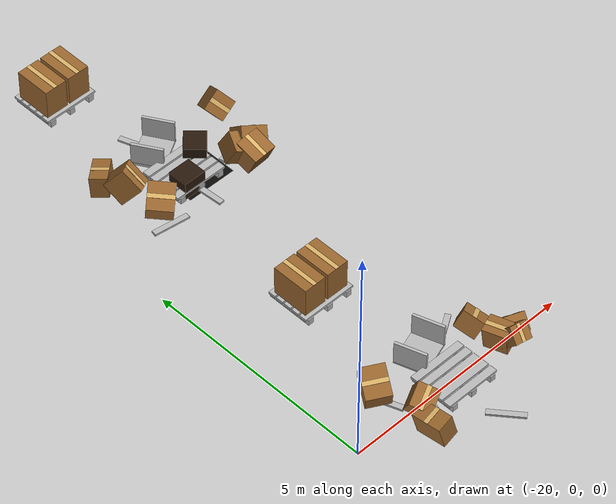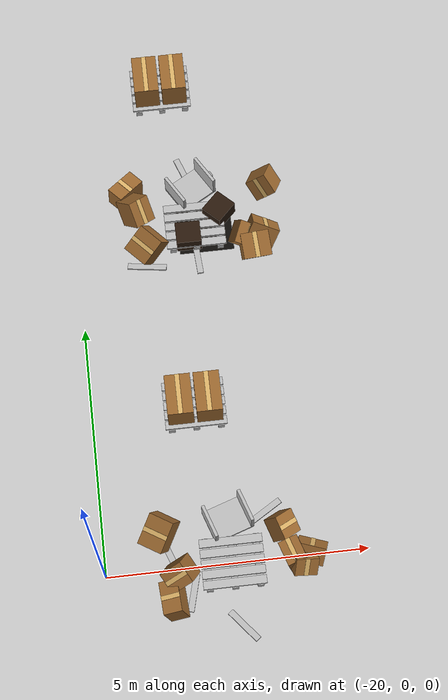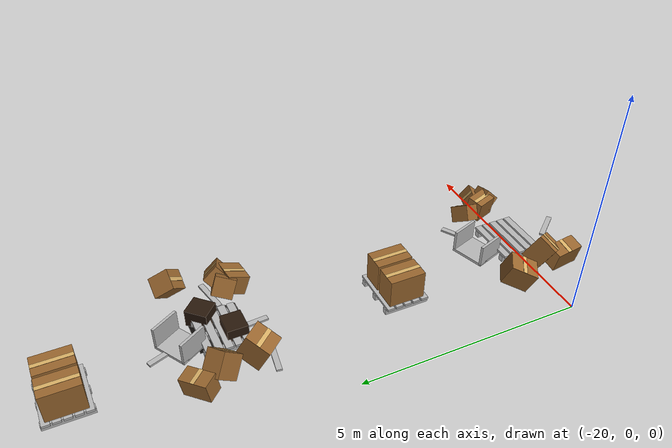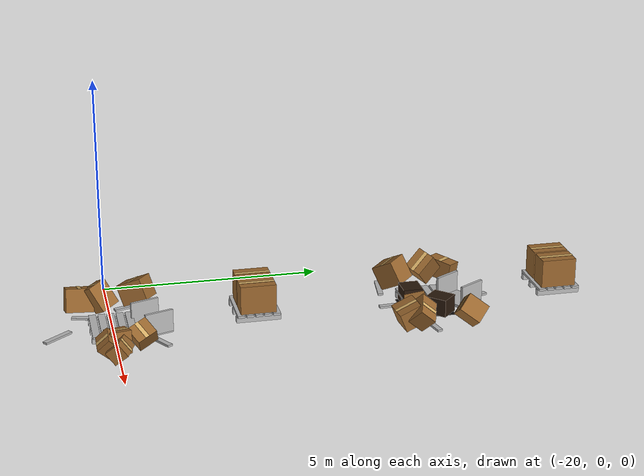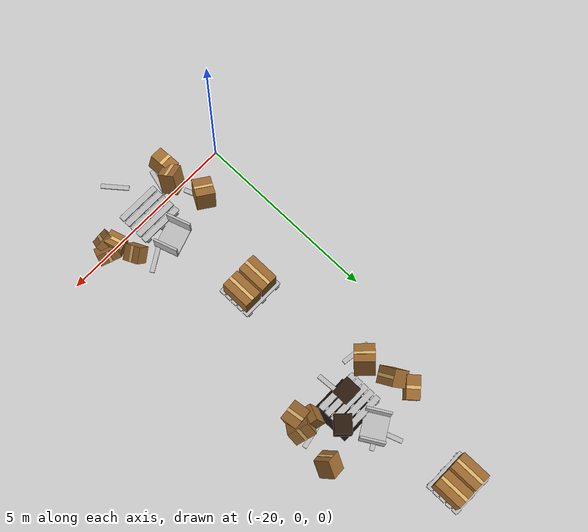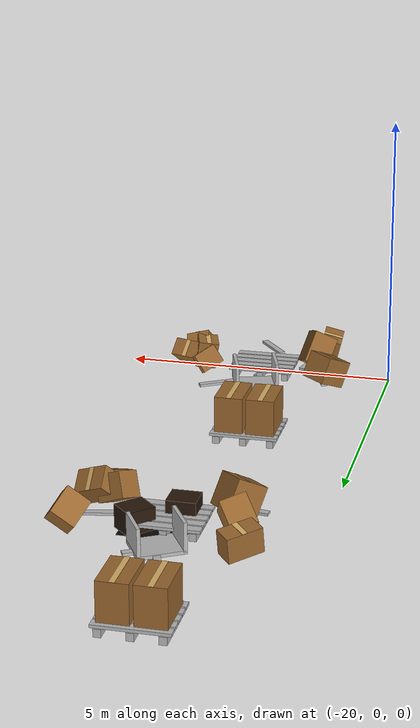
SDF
<sdf version="1.9">
 <world name="factory">
  <model name="organized_pallet_-1_2">
   <static>true</static>
   <pose>-18 3.2 0 0 0 0</pose>
   <link name="body">
    <visual name="runner0_visual">
     <pose>-0.48 0 0.065 0 0 0</pose>
     <geometry><mesh><uri>model://factory_scene_assets/meshes/wood_011.dae</uri></mesh></geometry>
    </visual>
    <collision name="runner0_collision">
     <pose>-0.48 0 0.065 0 0 0</pose>
     <geometry><box><size>0.12 1 0.13</size></box></geometry>
    </collision>
    <visual name="runner1_visual">
     <pose>0 0 0.065 0 0 0</pose>
     <geometry><mesh><uri>model://factory_scene_assets/meshes/wood_011.dae</uri></mesh></geometry>
    </visual>
    <collision name="runner1_collision">
     <pose>0 0 0.065 0 0 0</pose>
     <geometry><box><size>0.12 1 0.13</size></box></geometry>
    </collision>
    <visual name="runner2_visual">
     <pose>0.48 0 0.065 0 0 0</pose>
     <geometry><mesh><uri>model://factory_scene_assets/meshes/wood_011.dae</uri></mesh></geometry>
    </visual>
    <collision name="runner2_collision">
     <pose>0.48 0 0.065 0 0 0</pose>
     <geometry><box><size>0.12 1 0.13</size></box></geometry>
    </collision>
    <visual name="plank0_visual">
     <pose>0 -0.4 0.155 0 0 0</pose>
     <geometry><mesh><uri>model://factory_scene_assets/meshes/wood_012.dae</uri></mesh></geometry>
    </visual>
    <collision name="plank0_collision">
     <pose>0 -0.4 0.155 0 0 0</pose>
     <geometry><box><size>1.2 0.16 0.05</size></box></geometry>
    </collision>
    <visual name="plank1_visual">
     <pose>0 -0.2 0.155 0 0 0</pose>
     <geometry><mesh><uri>model://factory_scene_assets/meshes/wood_012.dae</uri></mesh></geometry>
    </visual>
    <collision name="plank1_collision">
     <pose>0 -0.2 0.155 0 0 0</pose>
     <geometry><box><size>1.2 0.16 0.05</size></box></geometry>
    </collision>
    <visual name="plank2_visual">
     <pose>0 0 0.155 0 0 0</pose>
     <geometry><mesh><uri>model://factory_scene_assets/meshes/wood_012.dae</uri></mesh></geometry>
    </visual>
    <collision name="plank2_collision">
     <pose>0 0 0.155 0 0 0</pose>
     <geometry><box><size>1.2 0.16 0.05</size></box></geometry>
    </collision>
    <visual name="plank3_visual">
     <pose>0 0.2 0.155 0 0 0</pose>
     <geometry><mesh><uri>model://factory_scene_assets/meshes/wood_012.dae</uri></mesh></geometry>
    </visual>
    <collision name="plank3_collision">
     <pose>0 0.2 0.155 0 0 0</pose>
     <geometry><box><size>1.2 0.16 0.05</size></box></geometry>
    </collision>
    <visual name="plank4_visual">
     <pose>0 0.4 0.155 0 0 0</pose>
     <geometry><mesh><uri>model://factory_scene_assets/meshes/wood_012.dae</uri></mesh></geometry>
    </visual>
    <collision name="plank4_collision">
     <pose>0 0.4 0.155 0 0 0</pose>
     <geometry><box><size>1.2 0.16 0.05</size></box></geometry>
    </collision>
    <visual name="load0_visual">
     <pose>-0.28 0 0.505 0 0 0</pose>
     <geometry><box><size>0.5 0.8 0.65</size></box></geometry>
     <material><ambient>.60 .40 .18 1</ambient><diffuse>.60 .40 .18 1</diffuse></material>
    </visual>
    <collision name="load0_collision">
     <pose>-0.28 0 0.505 0 0 0</pose>
     <geometry><box><size>0.5 0.8 0.65</size></box></geometry>
    </collision>
    <visual name="load0_tape_visual">
     <pose>-0.28 0 0.833 0 0 0</pose>
     <geometry><box><size>0.09 0.8 0.006</size></box></geometry>
     <material><ambient>.85 .69 .4 1</ambient><diffuse>.85 .69 .4 1</diffuse></material>
    </visual>
    <visual name="load1_visual">
     <pose>0.28 0 0.505 0 0 0</pose>
     <geometry><box><size>0.5 0.8 0.65</size></box></geometry>
     <material><ambient>.60 .40 .18 1</ambient><diffuse>.60 .40 .18 1</diffuse></material>
    </visual>
    <collision name="load1_collision">
     <pose>0.28 0 0.505 0 0 0</pose>
     <geometry><box><size>0.5 0.8 0.65</size></box></geometry>
    </collision>
    <visual name="load1_tape_visual">
     <pose>0.28 0 0.833 0 0 0</pose>
     <geometry><box><size>0.09 0.8 0.006</size></box></geometry>
     <material><ambient>.85 .69 .4 1</ambient><diffuse>.85 .69 .4 1</diffuse></material>
    </visual>
   </link>
  </model>
  <model name="organized_pallet_-1_3">
   <static>true</static>
   <pose>-18 10.2 0 0 0 0</pose>
   <link name="body">
    <visual name="runner0_visual">
     <pose>-0.48 0 0.065 0 0 0</pose>
     <geometry><mesh><uri>model://factory_scene_assets/meshes/wood_011.dae</uri></mesh></geometry>
    </visual>
    <collision name="runner0_collision">
     <pose>-0.48 0 0.065 0 0 0</pose>
     <geometry><box><size>0.12 1 0.13</size></box></geometry>
    </collision>
    <visual name="runner1_visual">
     <pose>0 0 0.065 0 0 0</pose>
     <geometry><mesh><uri>model://factory_scene_assets/meshes/wood_011.dae</uri></mesh></geometry>
    </visual>
    <collision name="runner1_collision">
     <pose>0 0 0.065 0 0 0</pose>
     <geometry><box><size>0.12 1 0.13</size></box></geometry>
    </collision>
    <visual name="runner2_visual">
     <pose>0.48 0 0.065 0 0 0</pose>
     <geometry><mesh><uri>model://factory_scene_assets/meshes/wood_011.dae</uri></mesh></geometry>
    </visual>
    <collision name="runner2_collision">
     <pose>0.48 0 0.065 0 0 0</pose>
     <geometry><box><size>0.12 1 0.13</size></box></geometry>
    </collision>
    <visual name="plank0_visual">
     <pose>0 -0.4 0.155 0 0 0</pose>
     <geometry><mesh><uri>model://factory_scene_assets/meshes/wood_012.dae</uri></mesh></geometry>
    </visual>
    <collision name="plank0_collision">
     <pose>0 -0.4 0.155 0 0 0</pose>
     <geometry><box><size>1.2 0.16 0.05</size></box></geometry>
    </collision>
    <visual name="plank1_visual">
     <pose>0 -0.2 0.155 0 0 0</pose>
     <geometry><mesh><uri>model://factory_scene_assets/meshes/wood_012.dae</uri></mesh></geometry>
    </visual>
    <collision name="plank1_collision">
     <pose>0 -0.2 0.155 0 0 0</pose>
     <geometry><box><size>1.2 0.16 0.05</size></box></geometry>
    </collision>
    <visual name="plank2_visual">
     <pose>0 0 0.155 0 0 0</pose>
     <geometry><mesh><uri>model://factory_scene_assets/meshes/wood_012.dae</uri></mesh></geometry>
    </visual>
    <collision name="plank2_collision">
     <pose>0 0 0.155 0 0 0</pose>
     <geometry><box><size>1.2 0.16 0.05</size></box></geometry>
    </collision>
    <visual name="plank3_visual">
     <pose>0 0.2 0.155 0 0 0</pose>
     <geometry><mesh><uri>model://factory_scene_assets/meshes/wood_012.dae</uri></mesh></geometry>
    </visual>
    <collision name="plank3_collision">
     <pose>0 0.2 0.155 0 0 0</pose>
     <geometry><box><size>1.2 0.16 0.05</size></box></geometry>
    </collision>
    <visual name="plank4_visual">
     <pose>0 0.4 0.155 0 0 0</pose>
     <geometry><mesh><uri>model://factory_scene_assets/meshes/wood_012.dae</uri></mesh></geometry>
    </visual>
    <collision name="plank4_collision">
     <pose>0 0.4 0.155 0 0 0</pose>
     <geometry><box><size>1.2 0.16 0.05</size></box></geometry>
    </collision>
    <visual name="load0_visual">
     <pose>-0.28 0 0.505 0 0 0</pose>
     <geometry><box><size>0.5 0.8 0.65</size></box></geometry>
     <material><ambient>.60 .40 .18 1</ambient><diffuse>.60 .40 .18 1</diffuse></material>
    </visual>
    <collision name="load0_collision">
     <pose>-0.28 0 0.505 0 0 0</pose>
     <geometry><box><size>0.5 0.8 0.65</size></box></geometry>
    </collision>
    <visual name="load0_tape_visual">
     <pose>-0.28 0 0.833 0 0 0</pose>
     <geometry><box><size>0.09 0.8 0.006</size></box></geometry>
     <material><ambient>.85 .69 .4 1</ambient><diffuse>.85 .69 .4 1</diffuse></material>
    </visual>
    <visual name="load1_visual">
     <pose>0.28 0 0.505 0 0 0</pose>
     <geometry><box><size>0.5 0.8 0.65</size></box></geometry>
     <material><ambient>.60 .40 .18 1</ambient><diffuse>.60 .40 .18 1</diffuse></material>
    </visual>
    <collision name="load1_collision">
     <pose>0.28 0 0.505 0 0 0</pose>
     <geometry><box><size>0.5 0.8 0.65</size></box></geometry>
    </collision>
    <visual name="load1_tape_visual">
     <pose>0.28 0 0.833 0 0 0</pose>
     <geometry><box><size>0.09 0.8 0.006</size></box></geometry>
     <material><ambient>.85 .69 .4 1</ambient><diffuse>.85 .69 .4 1</diffuse></material>
    </visual>
   </link>
  </model>
  <model name="fallen_pallet_1">
   <static>true</static>
   <pose>-17.6 0 0 0 0 0</pose>
   <link name="body">
    <visual name="runner0_visual">
     <pose>-0.48 0 0.065 0 0 0</pose>
     <geometry><mesh><uri>model://factory_scene_assets/meshes/wood_011.dae</uri></mesh></geometry>
    </visual>
    <collision name="runner0_collision">
     <pose>-0.48 0 0.065 0 0 0</pose>
     <geometry><box><size>0.12 1 0.13</size></box></geometry>
    </collision>
    <visual name="runner1_visual">
     <pose>0 0 0.065 0 0 0</pose>
     <geometry><mesh><uri>model://factory_scene_assets/meshes/wood_011.dae</uri></mesh></geometry>
    </visual>
    <collision name="runner1_collision">
     <pose>0 0 0.065 0 0 0</pose>
     <geometry><box><size>0.12 1 0.13</size></box></geometry>
    </collision>
    <visual name="runner2_visual">
     <pose>0.48 0 0.065 0 0 0</pose>
     <geometry><mesh><uri>model://factory_scene_assets/meshes/wood_011.dae</uri></mesh></geometry>
    </visual>
    <collision name="runner2_collision">
     <pose>0.48 0 0.065 0 0 0</pose>
     <geometry><box><size>0.12 1 0.13</size></box></geometry>
    </collision>
    <visual name="plank0_visual">
     <pose>0 -0.4 0.155 0 0 0</pose>
     <geometry><mesh><uri>model://factory_scene_assets/meshes/wood_012.dae</uri></mesh></geometry>
    </visual>
    <collision name="plank0_collision">
     <pose>0 -0.4 0.155 0 0 0</pose>
     <geometry><box><size>1.2 0.16 0.05</size></box></geometry>
    </collision>
    <visual name="plank1_visual">
     <pose>0 -0.2 0.155 0 0 0</pose>
     <geometry><mesh><uri>model://factory_scene_assets/meshes/wood_012.dae</uri></mesh></geometry>
    </visual>
    <collision name="plank1_collision">
     <pose>0 -0.2 0.155 0 0 0</pose>
     <geometry><box><size>1.2 0.16 0.05</size></box></geometry>
    </collision>
    <visual name="plank2_visual">
     <pose>0 0 0.155 0 0 0</pose>
     <geometry><mesh><uri>model://factory_scene_assets/meshes/wood_012.dae</uri></mesh></geometry>
    </visual>
    <collision name="plank2_collision">
     <pose>0 0 0.155 0 0 0</pose>
     <geometry><box><size>1.2 0.16 0.05</size></box></geometry>
    </collision>
    <visual name="plank3_visual">
     <pose>0 0.2 0.155 0 0 0</pose>
     <geometry><mesh><uri>model://factory_scene_assets/meshes/wood_012.dae</uri></mesh></geometry>
    </visual>
    <collision name="plank3_collision">
     <pose>0 0.2 0.155 0 0 0</pose>
     <geometry><box><size>1.2 0.16 0.05</size></box></geometry>
    </collision>
    <visual name="plank4_visual">
     <pose>0 0.4 0.155 0 0 0</pose>
     <geometry><mesh><uri>model://factory_scene_assets/meshes/wood_012.dae</uri></mesh></geometry>
    </visual>
    <collision name="plank4_collision">
     <pose>0 0.4 0.155 0 0 0</pose>
     <geometry><box><size>1.2 0.16 0.05</size></box></geometry>
    </collision>
   </link>
  </model>
  <model name="fallen_box_01_0">
   <static>true</static>
   <pose>-16.6 0.5448921 0 0 0 0</pose>
   <link name="body">
    <visual name="box_visual">
     <pose>0 0 0.3420089 -0.5201992 0.3890999 -1.221698</pose>
     <geometry><box><size>0.459849 0.4282872 0.3644511</size></box></geometry>
     <material><ambient>.60 .40 .18 1</ambient><diffuse>.60 .40 .18 1</diffuse></material>
    </visual>
    <collision name="box_collision">
     <pose>0 0 0.3420089 -0.5201992 0.3890999 -1.221698</pose>
     <geometry><box><size>0.459849 0.4282872 0.3644511</size></box></geometry>
    </collision>
    <visual name="box_tape_visual">
     <pose>0.1073689 -0.02580231 0.4907189 -0.5201992 0.3890999 -1.221698</pose>
     <geometry><box><size>0.09 0.4282872 0.006</size></box></geometry>
     <material><ambient>.85 .69 .4 1</ambient><diffuse>.85 .69 .4 1</diffuse></material>
    </visual>
   </link>
  </model>
  <model name="fallen_box_01_1">
   <static>true</static>
   <pose>-18.6 -0.1755497 0 0 0 0</pose>
   <link name="body">
    <visual name="box_visual">
     <pose>0 0 0.4355784 -0.4786406 -0.3208469 2.091017</pose>
     <geometry><box><size>0.4361576 0.4646616 0.6060799</size></box></geometry>
     <material><ambient>.60 .40 .18 1</ambient><diffuse>.60 .40 .18 1</diffuse></material>
    </visual>
    <collision name="box_collision">
     <pose>0 0 0.4355784 -0.4786406 -0.3208469 2.091017</pose>
     <geometry><box><size>0.4361576 0.4646616 0.6060799</size></box></geometry>
    </collision>
    <visual name="box_tape_visual">
     <pose>-0.07972295 -0.1444004 0.6933636 -0.4786406 -0.3208469 2.091017</pose>
     <geometry><box><size>0.09 0.4646616 0.006</size></box></geometry>
     <material><ambient>.85 .69 .4 1</ambient><diffuse>.85 .69 .4 1</diffuse></material>
    </visual>
   </link>
  </model>
  <model name="fallen_box_01_2">
   <static>true</static>
   <pose>-16.44 0.00037034 0 0 0 0</pose>
   <link name="body">
    <visual name="box_visual">
     <pose>0 0 0.298614 -0.05159656 -0.1462335 0.3119259</pose>
     <geometry><box><size>0.3835503 0.48381 0.5026813</size></box></geometry>
     <material><ambient>.60 .40 .18 1</ambient><diffuse>.60 .40 .18 1</diffuse></material>
    </visual>
    <collision name="box_collision">
     <pose>0 0 0.298614 -0.05159656 -0.1462335 0.3119259</pose>
     <geometry><box><size>0.3835503 0.48381 0.5026813</size></box></geometry>
    </collision>
    <visual name="box_tape_visual">
     <pose>-0.03925096 0.001125797 0.5499052 -0.05159656 -0.1462335 0.3119259</pose>
     <geometry><box><size>0.09 0.48381 0.006</size></box></geometry>
     <material><ambient>.85 .69 .4 1</ambient><diffuse>.85 .69 .4 1</diffuse></material>
    </visual>
   </link>
  </model>
  <model name="fallen_box_01_3">
   <static>true</static>
   <pose>-18.76 -0.6363676 0 0 0 0</pose>
   <link name="body">
    <visual name="box_visual">
     <pose>0 0 0.3346903 -0.2403323 0.0801278 1.637964</pose>
     <geometry><box><size>0.6254865 0.3611572 0.5305278</size></box></geometry>
     <material><ambient>.60 .40 .18 1</ambient><diffuse>.60 .40 .18 1</diffuse></material>
    </visual>
    <collision name="box_collision">
     <pose>0 0 0.3346903 -0.2403323 0.0801278 1.637964</pose>
     <geometry><box><size>0.6254865 0.3611572 0.5305278</size></box></geometry>
    </collision>
    <visual name="box_tape_visual">
     <pose>-0.06510939 0.01652254 0.594408 -0.2403323 0.0801278 1.637964</pose>
     <geometry><box><size>0.09 0.3611572 0.006</size></box></geometry>
     <material><ambient>.85 .69 .4 1</ambient><diffuse>.85 .69 .4 1</diffuse></material>
    </visual>
   </link>
  </model>
  <model name="fallen_box_01_4">
   <static>true</static>
   <pose>-16.28 -0.1930608 0 0 0 0</pose>
   <link name="body">
    <visual name="box_visual">
     <pose>0 0 0.3289384 0.7962434 0.271627 -0.00276406</pose>
     <geometry><box><size>0.4449424 0.3532526 0.4085685</size></box></geometry>
     <material><ambient>.60 .40 .18 1</ambient><diffuse>.60 .40 .18 1</diffuse></material>
    </visual>
    <collision name="box_collision">
     <pose>0 0 0.3289384 0.7962434 0.271627 -0.00276406</pose>
     <geometry><box><size>0.4449424 0.3532526 0.4085685</size></box></geometry>
    </collision>
    <visual name="box_tape_visual">
     <pose>0.03848673 -0.14826 0.4685969 0.7962434 0.271627 -0.00276406</pose>
     <geometry><box><size>0.09 0.3532526 0.006</size></box></geometry>
     <material><ambient>.85 .69 .4 1</ambient><diffuse>.85 .69 .4 1</diffuse></material>
    </visual>
   </link>
  </model>
  <model name="fallen_box_01_5">
   <static>true</static>
   <pose>-18.92 0.6620336 0 0 0 0</pose>
   <link name="body">
    <visual name="box_visual">
     <pose>0 0 0.3794469 0.09053192 0.4043876 -2.108078</pose>
     <geometry><box><size>0.6189971 0.4953338 0.496053</size></box></geometry>
     <material><ambient>.60 .40 .18 1</ambient><diffuse>.60 .40 .18 1</diffuse></material>
    </visual>
    <collision name="box_collision">
     <pose>0 0 0.3794469 0.09053192 0.4043876 -2.108078</pose>
     <geometry><box><size>0.6189971 0.4953338 0.496053</size></box></geometry>
    </collision>
    <visual name="box_tape_visual">
     <pose>-0.06983985 -0.072889 0.6092814 0.09053192 0.4043876 -2.108078</pose>
     <geometry><box><size>0.09 0.4953338 0.006</size></box></geometry>
     <material><ambient>.85 .69 .4 1</ambient><diffuse>.85 .69 .4 1</diffuse></material>
    </visual>
   </link>
  </model>
  <model name="fallen_box_01_6">
   <static>true</static>
   <pose>-16.12 0.01417092 0 0 0 0</pose>
   <link name="body">
    <visual name="box_visual">
     <pose>0 0 0.2614687 0.8930515 -0.02251883 2.796869</pose>
     <geometry><box><size>0.5600755 0.3371524 0.3633157</size></box></geometry>
     <material><ambient>.60 .40 .18 1</ambient><diffuse>.60 .40 .18 1</diffuse></material>
    </visual>
    <collision name="box_collision">
     <pose>0 0 0.2614687 0.8930515 -0.02251883 2.796869</pose>
     <geometry><box><size>0.5600755 0.3371524 0.3633157</size></box></geometry>
    </collision>
    <visual name="box_tape_visual">
     <pose>0.05106478 0.1345027 0.3772268 0.8930515 -0.02251883 2.796869</pose>
     <geometry><box><size>0.09 0.3371524 0.006</size></box></geometry>
     <material><ambient>.85 .69 .4 1</ambient><diffuse>.85 .69 .4 1</diffuse></material>
    </visual>
   </link>
  </model>
  <model name="broken_crate_01">
   <static>true</static>
   <pose>-17.6 0.85 0 0 0 0.3219497</pose>
   <link name="body">
    <visual name="base_visual">
     <pose>0 0 0.03 0 0 0</pose>
     <geometry><mesh><uri>model://factory_scene_assets/meshes/wood_013.dae</uri></mesh></geometry>
    </visual>
    <collision name="base_collision">
     <pose>0 0 0.03 0 0 0</pose>
     <geometry><box><size>0.8 0.65 0.06</size></box></geometry>
    </collision>
    <visual name="side0_visual">
     <pose>-0.37 0 0.28 0 0 0</pose>
     <geometry><mesh><uri>model://factory_scene_assets/meshes/wood_014.dae</uri></mesh></geometry>
    </visual>
    <collision name="side0_collision">
     <pose>-0.37 0 0.28 0 0 0</pose>
     <geometry><box><size>0.06 0.65 0.5</size></box></geometry>
    </collision>
    <visual name="side1_visual">
     <pose>0.37 0 0.28 0 0 0</pose>
     <geometry><mesh><uri>model://factory_scene_assets/meshes/wood_014.dae</uri></mesh></geometry>
    </visual>
    <collision name="side1_collision">
     <pose>0.37 0 0.28 0 0 0</pose>
     <geometry><box><size>0.06 0.65 0.5</size></box></geometry>
    </collision>
   </link>
  </model>
  <model name="debris_plank_01_0">
   <static>true</static>
   <pose>-16.88839 0.9232133 0 0 0 -2.59062</pose>
   <link name="body">
    <visual name="wood_visual">
     <pose>0 0 0.023 0 0 0</pose>
     <geometry><mesh><uri>model://factory_scene_assets/meshes/wood_020.dae</uri></mesh></geometry>
    </visual>
    <collision name="wood_collision">
     <pose>0 0 0.023 0 0 0</pose>
     <geometry><box><size>0.735846 0.12 0.045</size></box></geometry>
    </collision>
   </link>
  </model>
  <model name="debris_plank_01_1">
   <static>true</static>
   <pose>-17.60368 0.212979 0 0 0 -1.921106</pose>
   <link name="body">
    <visual name="wood_visual">
     <pose>0 0 0.023 0 0 0</pose>
     <geometry><mesh><uri>model://factory_scene_assets/meshes/wood_021.dae</uri></mesh></geometry>
    </visual>
    <collision name="wood_collision">
     <pose>0 0 0.023 0 0 0</pose>
     <geometry><box><size>0.454269 0.12 0.045</size></box></geometry>
    </collision>
   </link>
  </model>
  <model name="debris_plank_01_2">
   <static>true</static>
   <pose>-18.79177 0.3575579 0 0 0 1.928432</pose>
   <link name="body">
    <visual name="wood_visual">
     <pose>0 0 0.023 0 0 0</pose>
     <geometry><mesh><uri>model://factory_scene_assets/meshes/wood_022.dae</uri></mesh></geometry>
    </visual>
    <collision name="wood_collision">
     <pose>0 0 0.023 0 0 0</pose>
     <geometry><box><size>0.4644264 0.12 0.045</size></box></geometry>
    </collision>
   </link>
  </model>
  <model name="debris_plank_01_3">
   <static>true</static>
   <pose>-17.5134 -1.19979 0 0 0 -0.8870095</pose>
   <link name="body">
    <visual name="wood_visual">
     <pose>0 0 0.023 0 0 0</pose>
     <geometry><mesh><uri>model://factory_scene_assets/meshes/wood_023.dae</uri></mesh></geometry>
    </visual>
    <collision name="wood_collision">
     <pose>0 0 0.023 0 0 0</pose>
     <geometry><box><size>0.7385419 0.12 0.045</size></box></geometry>
    </collision>
   </link>
  </model>
  <model name="debris_plank_01_4">
   <static>true</static>
   <pose>-18.38792 -0.4815758 0 0 0 1.313795</pose>
   <link name="body">
    <visual name="wood_visual">
     <pose>0 0 0.023 0 0 0</pose>
     <geometry><mesh><uri>model://factory_scene_assets/meshes/wood_024.dae</uri></mesh></geometry>
    </visual>
    <collision name="wood_collision">
     <pose>0 0 0.023 0 0 0</pose>
     <geometry><box><size>0.7262388 0.12 0.045</size></box></geometry>
    </collision>
   </link>
  </model>
  <model name="fallen_pallet_2">
   <static>true</static>
   <pose>-17.6 7 0 0 0 0</pose>
   <link name="body">
    <visual name="runner0_visual">
     <pose>-0.48 0 0.065 0 0 0</pose>
     <geometry><mesh><uri>model://factory_scene_assets/meshes/wood_011.dae</uri></mesh></geometry>
    </visual>
    <collision name="runner0_collision">
     <pose>-0.48 0 0.065 0 0 0</pose>
     <geometry><box><size>0.12 1 0.13</size></box></geometry>
    </collision>
    <visual name="runner1_visual">
     <pose>0 0 0.065 0 0 0</pose>
     <geometry><mesh><uri>model://factory_scene_assets/meshes/wood_011.dae</uri></mesh></geometry>
    </visual>
    <collision name="runner1_collision">
     <pose>0 0 0.065 0 0 0</pose>
     <geometry><box><size>0.12 1 0.13</size></box></geometry>
    </collision>
    <visual name="runner2_visual">
     <pose>0.48 0 0.065 0 0 0</pose>
     <geometry><mesh><uri>model://factory_scene_assets/meshes/wood_011.dae</uri></mesh></geometry>
    </visual>
    <collision name="runner2_collision">
     <pose>0.48 0 0.065 0 0 0</pose>
     <geometry><box><size>0.12 1 0.13</size></box></geometry>
    </collision>
    <visual name="plank0_visual">
     <pose>0 -0.4 0.155 0 0 0</pose>
     <geometry><mesh><uri>model://factory_scene_assets/meshes/wood_012.dae</uri></mesh></geometry>
    </visual>
    <collision name="plank0_collision">
     <pose>0 -0.4 0.155 0 0 0</pose>
     <geometry><box><size>1.2 0.16 0.05</size></box></geometry>
    </collision>
    <visual name="plank1_visual">
     <pose>0 -0.2 0.155 0 0 0</pose>
     <geometry><mesh><uri>model://factory_scene_assets/meshes/wood_012.dae</uri></mesh></geometry>
    </visual>
    <collision name="plank1_collision">
     <pose>0 -0.2 0.155 0 0 0</pose>
     <geometry><box><size>1.2 0.16 0.05</size></box></geometry>
    </collision>
    <visual name="plank2_visual">
     <pose>0 0 0.155 0 0 0</pose>
     <geometry><mesh><uri>model://factory_scene_assets/meshes/wood_012.dae</uri></mesh></geometry>
    </visual>
    <collision name="plank2_collision">
     <pose>0 0 0.155 0 0 0</pose>
     <geometry><box><size>1.2 0.16 0.05</size></box></geometry>
    </collision>
    <visual name="plank3_visual">
     <pose>0 0.2 0.155 0 0 0</pose>
     <geometry><mesh><uri>model://factory_scene_assets/meshes/wood_012.dae</uri></mesh></geometry>
    </visual>
    <collision name="plank3_collision">
     <pose>0 0.2 0.155 0 0 0</pose>
     <geometry><box><size>1.2 0.16 0.05</size></box></geometry>
    </collision>
    <visual name="plank4_visual">
     <pose>0 0.4 0.155 0 0 0</pose>
     <geometry><mesh><uri>model://factory_scene_assets/meshes/wood_012.dae</uri></mesh></geometry>
    </visual>
    <collision name="plank4_collision">
     <pose>0 0.4 0.155 0 0 0</pose>
     <geometry><box><size>1.2 0.16 0.05</size></box></geometry>
    </collision>
   </link>
  </model>
  <model name="fallen_box_02_0">
   <static>true</static>
   <pose>-16.6 6.570843 0 0 0 0</pose>
   <link name="body">
    <visual name="box_visual">
     <pose>0 0 0.3684271 0.325879 0.4039801 -0.2893656</pose>
     <geometry><box><size>0.501822 0.4540903 0.443028</size></box></geometry>
     <material><ambient>.60 .40 .18 1</ambient><diffuse>.60 .40 .18 1</diffuse></material>
    </visual>
    <collision name="box_collision">
     <pose>0 0 0.3684271 0.325879 0.4039801 -0.2893656</pose>
     <geometry><box><size>0.501822 0.4540903 0.443028</size></box></geometry>
    </collision>
    <visual name="box_tape_visual">
     <pose>0.05962203 -0.09274496 0.5640035 0.325879 0.4039801 -0.2893656</pose>
     <geometry><box><size>0.09 0.4540903 0.006</size></box></geometry>
     <material><ambient>.85 .69 .4 1</ambient><diffuse>.85 .69 .4 1</diffuse></material>
    </visual>
   </link>
  </model>
  <model name="fallen_box_02_1">
   <static>true</static>
   <pose>-18.6 6.54655 0 0 0 0</pose>
   <link name="body">
    <visual name="box_visual">
     <pose>0 0 0.4113103 0.09984814 -0.4696425 0.7216002</pose>
     <geometry><box><size>0.5714273 0.5321504 0.5598048</size></box></geometry>
     <material><ambient>.60 .40 .18 1</ambient><diffuse>.60 .40 .18 1</diffuse></material>
    </visual>
    <collision name="box_collision">
     <pose>0 0 0.4113103 0.09984814 -0.4696425 0.7216002</pose>
     <geometry><box><size>0.5714273 0.5321504 0.5598048</size></box></geometry>
    </collision>
    <visual name="box_tape_visual">
     <pose>-0.07701276 -0.1053267 0.6623264 0.09984814 -0.4696425 0.7216002</pose>
     <geometry><box><size>0.09 0.5321504 0.006</size></box></geometry>
     <material><ambient>.85 .69 .4 1</ambient><diffuse>.85 .69 .4 1</diffuse></material>
    </visual>
   </link>
  </model>
  <model name="fallen_box_02_2">
   <static>true</static>
   <pose>-16.44 6.35204 0 0 0 0</pose>
   <link name="body">
    <visual name="box_visual">
     <pose>0 0 0.3211793 -0.3944705 -0.0387313 -3.044203</pose>
     <geometry><box><size>0.5698772 0.5124335 0.4373963</size></box></geometry>
     <material><ambient>.60 .40 .18 1</ambient><diffuse>.60 .40 .18 1</diffuse></material>
    </visual>
    <collision name="box_collision">
     <pose>0 0 0.3211793 -0.3944705 -0.0387313 -3.044203</pose>
     <geometry><box><size>0.5698772 0.5124335 0.4373963</size></box></geometry>
    </collision>
    <visual name="box_tape_visual">
     <pose>0.01617246 -0.08402854 0.5256976 -0.3944705 -0.0387313 -3.044203</pose>
     <geometry><box><size>0.09 0.5124335 0.006</size></box></geometry>
     <material><ambient>.85 .69 .4 1</ambient><diffuse>.85 .69 .4 1</diffuse></material>
    </visual>
   </link>
  </model>
  <model name="fallen_box_02_3">
   <static>true</static>
   <pose>-18.76 7.33201 0 0 0 0</pose>
   <link name="body">
    <visual name="box_visual">
     <pose>0 0 0.4256872 -0.7650703 -0.2477389 -2.592061</pose>
     <geometry><box><size>0.4468265 0.5263398 0.5268042</size></box></geometry>
     <material><ambient>.60 .40 .18 1</ambient><diffuse>.60 .40 .18 1</diffuse></material>
    </visual>
    <collision name="box_collision">
     <pose>0 0 0.4256872 -0.7650703 -0.2477389 -2.592061</pose>
     <geometry><box><size>0.4468265 0.5263398 0.5268042</size></box></geometry>
    </collision>
    <visual name="box_tape_visual">
     <pose>0.1365492 -0.132731 0.6119851 -0.7650703 -0.2477389 -2.592061</pose>
     <geometry><box><size>0.09 0.5263398 0.006</size></box></geometry>
     <material><ambient>.85 .69 .4 1</ambient><diffuse>.85 .69 .4 1</diffuse></material>
    </visual>
   </link>
  </model>
  <model name="fallen_box_02_4">
   <static>true</static>
   <pose>-16.28 6.604841 0 0 0 0</pose>
   <link name="body">
    <visual name="box_visual">
     <pose>0 0 0.3875351 0.7704973 -0.3672212 2.82675</pose>
     <geometry><box><size>0.5805939 0.4101226 0.4181141</size></box></geometry>
     <material><ambient>.60 .40 .18 1</ambient><diffuse>.60 .40 .18 1</diffuse></material>
    </visual>
    <collision name="box_collision">
     <pose>0 0 0.3875351 0.7704973 -0.3672212 2.82675</pose>
     <geometry><box><size>0.5805939 0.4101226 0.4181141</size></box></geometry>
    </collision>
    <visual name="box_tape_visual">
     <pose>0.09768182 0.1235188 0.5295547 0.7704973 -0.3672212 2.82675</pose>
     <geometry><box><size>0.09 0.4101226 0.006</size></box></geometry>
     <material><ambient>.85 .69 .4 1</ambient><diffuse>.85 .69 .4 1</diffuse></material>
    </visual>
   </link>
  </model>
  <model name="fallen_box_02_5">
   <static>true</static>
   <pose>-18.92 7.841766 0 0 0 0</pose>
   <link name="body">
    <visual name="box_visual">
     <pose>0 0 0.2782624 0.08425329 -0.1240959 -2.433122</pose>
     <geometry><box><size>0.6181815 0.355956 0.4351612</size></box></geometry>
     <material><ambient>.60 .40 .18 1</ambient><diffuse>.60 .40 .18 1</diffuse></material>
    </visual>
    <collision name="box_collision">
     <pose>0 0 0.2782624 0.08425329 -0.1240959 -2.433122</pose>
     <geometry><box><size>0.6181815 0.355956 0.4351612</size></box></geometry>
    </collision>
    <visual name="box_tape_visual">
     <pose>0.008580944 0.03179798 0.4963703 0.08425329 -0.1240959 -2.433122</pose>
     <geometry><box><size>0.09 0.355956 0.006</size></box></geometry>
     <material><ambient>.85 .69 .4 1</ambient><diffuse>.85 .69 .4 1</diffuse></material>
    </visual>
   </link>
  </model>
  <model name="fallen_box_02_6">
   <static>true</static>
   <pose>-16.12 7.671848 0 0 0 0</pose>
   <link name="body">
    <visual name="box_visual">
     <pose>0 0 0.4126839 -0.8319654 0.6027232 -3.075345</pose>
     <geometry><box><size>0.4475905 0.44325 0.5077784</size></box></geometry>
     <material><ambient>.60 .40 .18 1</ambient><diffuse>.60 .40 .18 1</diffuse></material>
    </visual>
    <collision name="box_collision">
     <pose>0 0 0.4126839 -0.8319654 0.6027232 -3.075345</pose>
     <geometry><box><size>0.4475905 0.44325 0.5077784</size></box></geometry>
    </collision>
    <visual name="box_tape_visual">
     <pose>-0.08528211 -0.1959825 0.5551966 -0.8319654 0.6027232 -3.075345</pose>
     <geometry><box><size>0.09 0.44325 0.006</size></box></geometry>
     <material><ambient>.85 .69 .4 1</ambient><diffuse>.85 .69 .4 1</diffuse></material>
    </visual>
   </link>
  </model>
  <model name="broken_crate_02">
   <static>true</static>
   <pose>-17.6 7.85 0 0 0 0.5360893</pose>
   <link name="body">
    <visual name="base_visual">
     <pose>0 0 0.03 0 0 0</pose>
     <geometry><mesh><uri>model://factory_scene_assets/meshes/wood_013.dae</uri></mesh></geometry>
    </visual>
    <collision name="base_collision">
     <pose>0 0 0.03 0 0 0</pose>
     <geometry><box><size>0.8 0.65 0.06</size></box></geometry>
    </collision>
    <visual name="side0_visual">
     <pose>-0.37 0 0.28 0 0 0</pose>
     <geometry><mesh><uri>model://factory_scene_assets/meshes/wood_014.dae</uri></mesh></geometry>
    </visual>
    <collision name="side0_collision">
     <pose>-0.37 0 0.28 0 0 0</pose>
     <geometry><box><size>0.06 0.65 0.5</size></box></geometry>
    </collision>
    <visual name="side1_visual">
     <pose>0.37 0 0.28 0 0 0</pose>
     <geometry><mesh><uri>model://factory_scene_assets/meshes/wood_014.dae</uri></mesh></geometry>
    </visual>
    <collision name="side1_collision">
     <pose>0.37 0 0.28 0 0 0</pose>
     <geometry><box><size>0.06 0.65 0.5</size></box></geometry>
    </collision>
   </link>
  </model>
  <model name="debris_plank_02_0">
   <static>true</static>
   <pose>-17.66959 8.120579 0 0 0 -1.229555</pose>
   <link name="body">
    <visual name="wood_visual">
     <pose>0 0 0.023 0 0 0</pose>
     <geometry><mesh><uri>model://factory_scene_assets/meshes/wood_025.dae</uri></mesh></geometry>
    </visual>
    <collision name="wood_collision">
     <pose>0 0 0.023 0 0 0</pose>
     <geometry><box><size>0.9445278 0.12 0.045</size></box></geometry>
    </collision>
   </link>
  </model>
  <model name="debris_plank_02_1">
   <static>true</static>
   <pose>-16.44642 6.862942 0 0 0 0.2104024</pose>
   <link name="body">
    <visual name="wood_visual">
     <pose>0 0 0.023 0 0 0</pose>
     <geometry><mesh><uri>model://factory_scene_assets/meshes/wood_026.dae</uri></mesh></geometry>
    </visual>
    <collision name="wood_collision">
     <pose>0 0 0.023 0 0 0</pose>
     <geometry><box><size>0.8092951 0.12 0.045</size></box></geometry>
    </collision>
   </link>
  </model>
  <model name="debris_plank_02_2">
   <static>true</static>
   <pose>-17.61113 6.410282 0 0 0 1.635029</pose>
   <link name="body">
    <visual name="wood_visual">
     <pose>0 0 0.023 0 0 0</pose>
     <geometry><mesh><uri>model://factory_scene_assets/meshes/wood_027.dae</uri></mesh></geometry>
    </visual>
    <collision name="wood_collision">
     <pose>0 0 0.023 0 0 0</pose>
     <geometry><box><size>0.8562717 0.12 0.045</size></box></geometry>
    </collision>
   </link>
  </model>
  <model name="debris_plank_02_3">
   <static>true</static>
   <pose>-18.64351 6.240902 0 0 0 -0.1398707</pose>
   <link name="body">
    <visual name="wood_visual">
     <pose>0 0 0.023 0 0 0</pose>
     <geometry><mesh><uri>model://factory_scene_assets/meshes/wood_028.dae</uri></mesh></geometry>
    </visual>
    <collision name="wood_collision">
     <pose>0 0 0.023 0 0 0</pose>
     <geometry><box><size>0.778608 0.12 0.045</size></box></geometry>
    </collision>
   </link>
  </model>
  <model name="debris_plank_02_4">
   <static>true</static>
   <pose>-17.54102 7.953144 0 0 0 0.5044243</pose>
   <link name="body">
    <visual name="wood_visual">
     <pose>0 0 0.023 0 0 0</pose>
     <geometry><mesh><uri>model://factory_scene_assets/meshes/wood_029.dae</uri></mesh></geometry>
    </visual>
    <collision name="wood_collision">
     <pose>0 0 0.023 0 0 0</pose>
     <geometry><box><size>0.9233741 0.12 0.045</size></box></geometry>
    </collision>
   </link>
  </model>
  <model name="fire_02">
   <static>true</static>
   <pose>-17.4 7 0 0 0 0</pose>
   <link name="body">
    <visual name="scorch_visual">
     <pose>0 0 0.003 0 0 0</pose>
     <geometry><box><size>1.1 1.1 0.004</size></box></geometry>
     <material><ambient>.045 .035 .025 1</ambient><diffuse>.045 .035 .025 1</diffuse></material>
    </visual>
    <visual name="charred_crate0_visual">
     <pose>-0.35 -0.25 0.2 0 0 0</pose>
     <geometry><box><size>0.5 0.45 0.4</size></box></geometry>
     <material><ambient>.16 .095 .045 1</ambient><diffuse>.16 .095 .045 1</diffuse></material>
    </visual>
    <collision name="charred_crate0_collision">
     <pose>-0.35 -0.25 0.2 0 0 0</pose>
     <geometry><box><size>0.5 0.45 0.4</size></box></geometry>
    </collision>
    <visual name="charred_crate1_visual">
     <pose>0.32 0.25 0.2 0 0 0.8</pose>
     <geometry><box><size>0.5 0.45 0.4</size></box></geometry>
     <material><ambient>.16 .095 .045 1</ambient><diffuse>.16 .095 .045 1</diffuse></material>
    </visual>
    <collision name="charred_crate1_collision">
     <pose>0.32 0.25 0.2 0 0 0.8</pose>
     <geometry><box><size>0.5 0.45 0.4</size></box></geometry>
    </collision>
    <particle_emitter name="flame" type="box">
     <pose>0 0 .35 0 -1.57079633 0</pose>
     <emitting>true</emitting>
     <size>.12 .65 .65</size>
     <particle_size>.65 1.15 .65</particle_size>
     <lifetime>0.9</lifetime>
     <rate>40</rate>
     <min_velocity>0.35</min_velocity>
     <max_velocity>1.1</max_velocity>
     <scale_rate>0.02</scale_rate>
     <particle_scatter_ratio>.05</particle_scatter_ratio>
     <color_start>1 1 1 1</color_start>
     <color_end>1 .65 .35 0</color_end>
     <material>
      <diffuse>1 1 1 1</diffuse>
      <emissive>1 .55 .1 1</emissive>
      <pbr><metal><albedo_map>model://factory_scene_assets/textures/flame_colored.png</albedo_map></metal></pbr>
     </material>
    </particle_emitter>
    <particle_emitter name="smoke" type="box">
     <pose>0 0 1.25 0 -1.57079633 0</pose>
     <emitting>true</emitting>
     <size>.15 .85 .85</size>
     <particle_size>.8 .8 .8</particle_size>
     <lifetime>3</lifetime>
     <rate>7</rate>
     <min_velocity>0.45</min_velocity>
     <max_velocity>0.8</max_velocity>
     <scale_rate>0.45</scale_rate>
     <particle_scatter_ratio>.05</particle_scatter_ratio>
     <color_start>1 1 1 1</color_start>
     <color_end>.65 .65 .65 0</color_end>
     <material>
      <diffuse>1 1 1 1</diffuse>
      <emissive>0 0 0 1</emissive>
      <pbr><metal><albedo_map>model://factory_scene_assets/textures/smoke_gray.png</albedo_map></metal></pbr>
     </material>
    </particle_emitter>
    <light name="fire_glow" type="point">
     <pose>0 0 .8 0 0 0</pose>
     <diffuse>1 .38 .025 1</diffuse>
     <cast_shadows>false</cast_shadows>
     <attenuation>
      <range>4</range>
      <constant>1</constant>
      <linear>0.5</linear>
      <quadratic>0.2</quadratic>
     </attenuation>
    </light>
   </link>
  </model>
 </world>
</sdf>
